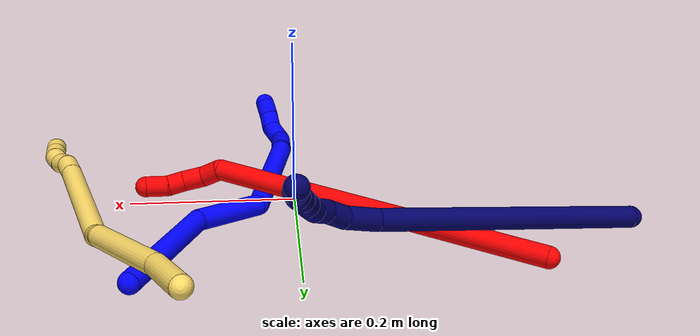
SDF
<sdf version="1.7">
 <world name="default">
  <model name="1">
   <static>0</static>
   <link name="1">
    <collision name="collision-cylinder-e_1_1_4">
     <pose>0.021065 -0.063349 -0.022676 1.91453 0.303402 0.427557</pose>
     <geometry><cylinder><radius>0.0125</radius><length>0.141012</length></cylinder></geometry>
     <surface>
      <friction><ode><mu>1.16</mu><mu2>1.16</mu2><slip1>0</slip1><slip2>0</slip2></ode></friction>
      <contact><ode><kp>1e+06</kp><kd>1</kd><max_vel>0</max_vel><min_depth>0.001</min_depth></ode></contact>
     </surface>
    </collision>
    <visual name="visual-cylinder-e_1_1_4">
     <pose>0.021065 -0.063349 -0.022676 1.91453 0.303402 0.427557</pose>
     <geometry><cylinder><radius>0.0125</radius><length>0.141012</length></cylinder></geometry>
     <material><ambient>0 0 1 1</ambient></material>
    </visual>
    <collision name="collision-cylinder-e_2_4_5">
     <pose>0.047433 -0.154496 -0.076341 2.41045 0.126707 0.328478</pose>
     <geometry><cylinder><radius>0.0125</radius><length>0.083933</length></cylinder></geometry>
     <surface>
      <friction><ode><mu>1.16</mu><mu2>1.16</mu2><slip1>0</slip1><slip2>0</slip2></ode></friction>
      <contact><ode><kp>1e+06</kp><kd>1</kd><max_vel>0</max_vel><min_depth>0.001</min_depth></ode></contact>
     </surface>
    </collision>
    <visual name="visual-cylinder-e_2_4_5">
     <pose>0.047433 -0.154496 -0.076341 2.41045 0.126707 0.328478</pose>
     <geometry><cylinder><radius>0.0125</radius><length>0.083933</length></cylinder></geometry>
     <material><ambient>0 0 1 1</ambient></material>
    </visual>
    <collision name="collision-cylinder-e_3_5_6">
     <pose>0.07616 -0.247343 -0.112954 1.65702 0.34445 0.374815</pose>
     <geometry><cylinder><radius>0.0125</radius><length>0.138733</length></cylinder></geometry>
     <surface>
      <friction><ode><mu>1.16</mu><mu2>1.16</mu2><slip1>0</slip1><slip2>0</slip2></ode></friction>
      <contact><ode><kp>1e+06</kp><kd>1</kd><max_vel>0</max_vel><min_depth>0.001</min_depth></ode></contact>
     </surface>
    </collision>
    <visual name="visual-cylinder-e_3_5_6">
     <pose>0.07616 -0.247343 -0.112954 1.65702 0.34445 0.374815</pose>
     <geometry><cylinder><radius>0.0125</radius><length>0.138733</length></cylinder></geometry>
     <material><ambient>0 0 1 1</ambient></material>
    </visual>
    <collision name="collision-cylinder-e_4_6_7">
     <pose>0.121685 -0.338419 -0.118002 1.54873 0.70389 0.689727</pose>
     <geometry><cylinder><radius>0.0125</radius><length>0.0683</length></cylinder></geometry>
     <surface>
      <friction><ode><mu>1.16</mu><mu2>1.16</mu2><slip1>0</slip1><slip2>0</slip2></ode></friction>
      <contact><ode><kp>1e+06</kp><kd>1</kd><max_vel>0</max_vel><min_depth>0.001</min_depth></ode></contact>
     </surface>
    </collision>
    <visual name="visual-cylinder-e_4_6_7">
     <pose>0.121685 -0.338419 -0.118002 1.54873 0.70389 0.689727</pose>
     <geometry><cylinder><radius>0.0125</radius><length>0.0683</length></cylinder></geometry>
     <material><ambient>0 0 1 1</ambient></material>
    </visual>
    <collision name="collision-cylinder-e_5_7_8">
     <pose>0.146867 -0.374519 -0.109237 0.888066 0.232974 0.111219</pose>
     <geometry><cylinder><radius>0.0125</radius><length>0.026686</length></cylinder></geometry>
     <surface>
      <friction><ode><mu>1.16</mu><mu2>1.16</mu2><slip1>0</slip1><slip2>0</slip2></ode></friction>
      <contact><ode><kp>1e+06</kp><kd>1</kd><max_vel>0</max_vel><min_depth>0.001</min_depth></ode></contact>
     </surface>
    </collision>
    <visual name="visual-cylinder-e_5_7_8">
     <pose>0.146867 -0.374519 -0.109237 0.888066 0.232974 0.111219</pose>
     <geometry><cylinder><radius>0.0125</radius><length>0.026686</length></cylinder></geometry>
     <material><ambient>0 0 1 1</ambient></material>
    </visual>
    <collision name="collision-cylinder-e_6_8_9">
     <pose>0.149223 -0.39402 -0.096605 1.13059 -0.069378 -0.044021</pose>
     <geometry><cylinder><radius>0.0125</radius><length>0.020894</length></cylinder></geometry>
     <surface>
      <friction><ode><mu>1.16</mu><mu2>1.16</mu2><slip1>0</slip1><slip2>0</slip2></ode></friction>
      <contact><ode><kp>1e+06</kp><kd>1</kd><max_vel>0</max_vel><min_depth>0.001</min_depth></ode></contact>
     </surface>
    </collision>
    <visual name="visual-cylinder-e_6_8_9">
     <pose>0.149223 -0.39402 -0.096605 1.13059 -0.069378 -0.044021</pose>
     <geometry><cylinder><radius>0.0125</radius><length>0.020894</length></cylinder></geometry>
     <material><ambient>0 0 1 1</ambient></material>
    </visual>
    <collision name="collision-cylinder-e_7_9_2">
     <pose>0.146779 -0.411952 -0.08676 1.00467 -0.169099 -0.093048</pose>
     <geometry><cylinder><radius>0.0125</radius><length>0.020443</length></cylinder></geometry>
     <surface>
      <friction><ode><mu>1.16</mu><mu2>1.16</mu2><slip1>0</slip1><slip2>0</slip2></ode></friction>
      <contact><ode><kp>1e+06</kp><kd>1</kd><max_vel>0</max_vel><min_depth>0.001</min_depth></ode></contact>
     </surface>
    </collision>
    <visual name="visual-cylinder-e_7_9_2">
     <pose>0.146779 -0.411952 -0.08676 1.00467 -0.169099 -0.093048</pose>
     <geometry><cylinder><radius>0.0125</radius><length>0.020443</length></cylinder></geometry>
     <material><ambient>0 0 1 1</ambient></material>
    </visual>
    <collision name="collision-sphere-2">
     <pose>0.145059 -0.420455 -0.081356 0 -0 0</pose>
     <geometry><sphere><radius>0.0125</radius></sphere></geometry>
     <surface>
      <friction><ode><mu>1.16</mu><mu2>1.16</mu2><slip1>0</slip1><slip2>0</slip2></ode></friction>
      <contact><ode><kp>1e+06</kp><kd>1</kd><max_vel>0</max_vel><min_depth>0.001</min_depth></ode></contact>
     </surface>
    </collision>
    <visual name="visual-sphere-2">
     <pose>0.145059 -0.420455 -0.081356 0 -0 0</pose>
     <geometry><sphere><radius>0.0125</radius></sphere></geometry>
     <material><ambient>0 0 1 1</ambient></material>
    </visual>
    <collision name="collision-sphere-9">
     <pose>0.148499 -0.403448 -0.092164 0 -0 0</pose>
     <geometry><sphere><radius>0.0125</radius></sphere></geometry>
     <surface>
      <friction><ode><mu>1.16</mu><mu2>1.16</mu2><slip1>0</slip1><slip2>0</slip2></ode></friction>
      <contact><ode><kp>1e+06</kp><kd>1</kd><max_vel>0</max_vel><min_depth>0.001</min_depth></ode></contact>
     </surface>
    </collision>
    <visual name="visual-sphere-9">
     <pose>0.148499 -0.403448 -0.092164 0 -0 0</pose>
     <geometry><sphere><radius>0.0125</radius></sphere></geometry>
     <material><ambient>0 0 1 1</ambient></material>
    </visual>
    <collision name="collision-sphere-4">
     <pose>0.04213 -0.126699 -0.045352 0 -0 0</pose>
     <geometry><sphere><radius>0.0125</radius></sphere></geometry>
     <surface>
      <friction><ode><mu>1.16</mu><mu2>1.16</mu2><slip1>0</slip1><slip2>0</slip2></ode></friction>
      <contact><ode><kp>1e+06</kp><kd>1</kd><max_vel>0</max_vel><min_depth>0.001</min_depth></ode></contact>
     </surface>
    </collision>
    <visual name="visual-sphere-4">
     <pose>0.04213 -0.126699 -0.045352 0 -0 0</pose>
     <geometry><sphere><radius>0.0125</radius></sphere></geometry>
     <material><ambient>0 0 1 1</ambient></material>
    </visual>
    <collision name="collision-sphere-1">
     <geometry><sphere><radius>0.0125</radius></sphere></geometry>
     <surface>
      <friction><ode><mu>1.16</mu><mu2>1.16</mu2><slip1>0</slip1><slip2>0</slip2></ode></friction>
      <contact><ode><kp>1e+06</kp><kd>1</kd><max_vel>0</max_vel><min_depth>0.001</min_depth></ode></contact>
     </surface>
    </collision>
    <visual name="visual-sphere-1">
     <geometry><sphere><radius>0.0125</radius></sphere></geometry>
     <material><ambient>0 0 1 1</ambient></material>
    </visual>
    <collision name="collision-sphere-8">
     <pose>0.149947 -0.384591 -0.101046 0 -0 0</pose>
     <geometry><sphere><radius>0.0125</radius></sphere></geometry>
     <surface>
      <friction><ode><mu>1.16</mu><mu2>1.16</mu2><slip1>0</slip1><slip2>0</slip2></ode></friction>
      <contact><ode><kp>1e+06</kp><kd>1</kd><max_vel>0</max_vel><min_depth>0.001</min_depth></ode></contact>
     </surface>
    </collision>
    <visual name="visual-sphere-8">
     <pose>0.149947 -0.384591 -0.101046 0 -0 0</pose>
     <geometry><sphere><radius>0.0125</radius></sphere></geometry>
     <material><ambient>0 0 1 1</ambient></material>
    </visual>
    <collision name="collision-sphere-5">
     <pose>0.052736 -0.182293 -0.107331 0 -0 0</pose>
     <geometry><sphere><radius>0.0125</radius></sphere></geometry>
     <surface>
      <friction><ode><mu>1.16</mu><mu2>1.16</mu2><slip1>0</slip1><slip2>0</slip2></ode></friction>
      <contact><ode><kp>1e+06</kp><kd>1</kd><max_vel>0</max_vel><min_depth>0.001</min_depth></ode></contact>
     </surface>
    </collision>
    <visual name="visual-sphere-5">
     <pose>0.052736 -0.182293 -0.107331 0 -0 0</pose>
     <geometry><sphere><radius>0.0125</radius></sphere></geometry>
     <material><ambient>0 0 1 1</ambient></material>
    </visual>
    <collision name="collision-sphere-6">
     <pose>0.099584 -0.312392 -0.118577 0 -0 0</pose>
     <geometry><sphere><radius>0.0125</radius></sphere></geometry>
     <surface>
      <friction><ode><mu>1.16</mu><mu2>1.16</mu2><slip1>0</slip1><slip2>0</slip2></ode></friction>
      <contact><ode><kp>1e+06</kp><kd>1</kd><max_vel>0</max_vel><min_depth>0.001</min_depth></ode></contact>
     </surface>
    </collision>
    <visual name="visual-sphere-6">
     <pose>0.099584 -0.312392 -0.118577 0 -0 0</pose>
     <geometry><sphere><radius>0.0125</radius></sphere></geometry>
     <material><ambient>0 0 1 1</ambient></material>
    </visual>
    <collision name="collision-sphere-7">
     <pose>0.143786 -0.364446 -0.117428 0 -0 0</pose>
     <geometry><sphere><radius>0.0125</radius></sphere></geometry>
     <surface>
      <friction><ode><mu>1.16</mu><mu2>1.16</mu2><slip1>0</slip1><slip2>0</slip2></ode></friction>
      <contact><ode><kp>1e+06</kp><kd>1</kd><max_vel>0</max_vel><min_depth>0.001</min_depth></ode></contact>
     </surface>
    </collision>
    <visual name="visual-sphere-7">
     <pose>0.143786 -0.364446 -0.117428 0 -0 0</pose>
     <geometry><sphere><radius>0.0125</radius></sphere></geometry>
     <material><ambient>0 0 1 1</ambient></material>
    </visual>
    <inertial>
     <pose>0.071733 -0.211955 -0.080085 0 -0 0</pose>
     <mass>0.5</mass>
     <inertia>
      <ixx>0.000695</ixx>
      <ixy>0</ixy>
      <ixz>0</ixz>
      <iyy>0.000116</iyy>
      <iyz>0</iyz>
      <izz>0.00031</izz>
     </inertia>
    </inertial>
   </link>
   <pose>0.177005 0.207733 0.012493 -0.905794 0.980997 -1.10015</pose>
  </model>
  <model name="2">
   <static>0</static>
   <link name="2">
    <collision name="collision-cylinder-e_1_1_4">
     <pose>0.112132 -0.048036 -0.159849 2.84967 0.591555 2.2426</pose>
     <geometry><cylinder><radius>0.0125</radius><length>0.402158</length></cylinder></geometry>
     <surface>
      <friction><ode><mu>1.16</mu><mu2>1.16</mu2><slip1>0</slip1><slip2>0</slip2></ode></friction>
      <contact><ode><kp>1e+06</kp><kd>1</kd><max_vel>0</max_vel><min_depth>0.001</min_depth></ode></contact>
     </surface>
    </collision>
    <visual name="visual-cylinder-e_1_1_4">
     <pose>0.112132 -0.048036 -0.159849 2.84967 0.591555 2.2426</pose>
     <geometry><cylinder><radius>0.0125</radius><length>0.402158</length></cylinder></geometry>
     <material><ambient>1 0 0 1</ambient></material>
    </visual>
    <collision name="collision-cylinder-e_2_4_5">
     <pose>0.235322 -0.095014 -0.325369 -2.95723 1.08996 -2.83895</pose>
     <geometry><cylinder><radius>0.0125</radius><length>0.024943</length></cylinder></geometry>
     <surface>
      <friction><ode><mu>1.16</mu><mu2>1.16</mu2><slip1>0</slip1><slip2>0</slip2></ode></friction>
      <contact><ode><kp>1e+06</kp><kd>1</kd><max_vel>0</max_vel><min_depth>0.001</min_depth></ode></contact>
     </surface>
    </collision>
    <visual name="visual-cylinder-e_2_4_5">
     <pose>0.235322 -0.095014 -0.325369 -2.95723 1.08996 -2.83895</pose>
     <geometry><cylinder><radius>0.0125</radius><length>0.024943</length></cylinder></geometry>
     <material><ambient>1 0 0 1</ambient></material>
    </visual>
    <collision name="collision-cylinder-e_3_5_6">
     <pose>0.25782 -0.098333 -0.335589 2.37562 1.06654 1.94385</pose>
     <geometry><cylinder><radius>0.0125</radius><length>0.026133</length></cylinder></geometry>
     <surface>
      <friction><ode><mu>1.16</mu><mu2>1.16</mu2><slip1>0</slip1><slip2>0</slip2></ode></friction>
      <contact><ode><kp>1e+06</kp><kd>1</kd><max_vel>0</max_vel><min_depth>0.001</min_depth></ode></contact>
     </surface>
    </collision>
    <visual name="visual-cylinder-e_3_5_6">
     <pose>0.25782 -0.098333 -0.335589 2.37562 1.06654 1.94385</pose>
     <geometry><cylinder><radius>0.0125</radius><length>0.026133</length></cylinder></geometry>
     <material><ambient>1 0 0 1</ambient></material>
    </visual>
    <collision name="collision-cylinder-e_4_6_7">
     <pose>0.277716 -0.108188 -0.341156 1.75436 0.988204 1.14976</pose>
     <geometry><cylinder><radius>0.0125</radius><length>0.020253</length></cylinder></geometry>
     <surface>
      <friction><ode><mu>1.16</mu><mu2>1.16</mu2><slip1>0</slip1><slip2>0</slip2></ode></friction>
      <contact><ode><kp>1e+06</kp><kd>1</kd><max_vel>0</max_vel><min_depth>0.001</min_depth></ode></contact>
     </surface>
    </collision>
    <visual name="visual-cylinder-e_4_6_7">
     <pose>0.277716 -0.108188 -0.341156 1.75436 0.988204 1.14976</pose>
     <geometry><cylinder><radius>0.0125</radius><length>0.020253</length></cylinder></geometry>
     <material><ambient>1 0 0 1</ambient></material>
    </visual>
    <collision name="collision-cylinder-e_5_7_2">
     <pose>0.295705 -0.121771 -0.346548 2.06573 0.802582 1.2364</pose>
     <geometry><cylinder><radius>0.0125</radius><length>0.026512</length></cylinder></geometry>
     <surface>
      <friction><ode><mu>1.16</mu><mu2>1.16</mu2><slip1>0</slip1><slip2>0</slip2></ode></friction>
      <contact><ode><kp>1e+06</kp><kd>1</kd><max_vel>0</max_vel><min_depth>0.001</min_depth></ode></contact>
     </surface>
    </collision>
    <visual name="visual-cylinder-e_5_7_2">
     <pose>0.295705 -0.121771 -0.346548 2.06573 0.802582 1.2364</pose>
     <geometry><cylinder><radius>0.0125</radius><length>0.026512</length></cylinder></geometry>
     <material><ambient>1 0 0 1</ambient></material>
    </visual>
    <collision name="collision-sphere-2">
     <pose>0.305239 -0.129877 -0.350923 0 -0 0</pose>
     <geometry><sphere><radius>0.0125</radius></sphere></geometry>
     <surface>
      <friction><ode><mu>1.16</mu><mu2>1.16</mu2><slip1>0</slip1><slip2>0</slip2></ode></friction>
      <contact><ode><kp>1e+06</kp><kd>1</kd><max_vel>0</max_vel><min_depth>0.001</min_depth></ode></contact>
     </surface>
    </collision>
    <visual name="visual-sphere-2">
     <pose>0.305239 -0.129877 -0.350923 0 -0 0</pose>
     <geometry><sphere><radius>0.0125</radius></sphere></geometry>
     <material><ambient>1 0 0 1</ambient></material>
    </visual>
    <collision name="collision-sphere-7">
     <pose>0.286172 -0.113666 -0.342173 0 -0 0</pose>
     <geometry><sphere><radius>0.0125</radius></sphere></geometry>
     <surface>
      <friction><ode><mu>1.16</mu><mu2>1.16</mu2><slip1>0</slip1><slip2>0</slip2></ode></friction>
      <contact><ode><kp>1e+06</kp><kd>1</kd><max_vel>0</max_vel><min_depth>0.001</min_depth></ode></contact>
     </surface>
    </collision>
    <visual name="visual-sphere-7">
     <pose>0.286172 -0.113666 -0.342173 0 -0 0</pose>
     <geometry><sphere><radius>0.0125</radius></sphere></geometry>
     <material><ambient>1 0 0 1</ambient></material>
    </visual>
    <collision name="collision-sphere-6">
     <pose>0.26926 -0.10271 -0.340139 0 -0 0</pose>
     <geometry><sphere><radius>0.0125</radius></sphere></geometry>
     <surface>
      <friction><ode><mu>1.16</mu><mu2>1.16</mu2><slip1>0</slip1><slip2>0</slip2></ode></friction>
      <contact><ode><kp>1e+06</kp><kd>1</kd><max_vel>0</max_vel><min_depth>0.001</min_depth></ode></contact>
     </surface>
    </collision>
    <visual name="visual-sphere-6">
     <pose>0.26926 -0.10271 -0.340139 0 -0 0</pose>
     <geometry><sphere><radius>0.0125</radius></sphere></geometry>
     <material><ambient>1 0 0 1</ambient></material>
    </visual>
    <collision name="collision-sphere-5">
     <pose>0.246379 -0.093956 -0.331039 0 -0 0</pose>
     <geometry><sphere><radius>0.0125</radius></sphere></geometry>
     <surface>
      <friction><ode><mu>1.16</mu><mu2>1.16</mu2><slip1>0</slip1><slip2>0</slip2></ode></friction>
      <contact><ode><kp>1e+06</kp><kd>1</kd><max_vel>0</max_vel><min_depth>0.001</min_depth></ode></contact>
     </surface>
    </collision>
    <visual name="visual-sphere-5">
     <pose>0.246379 -0.093956 -0.331039 0 -0 0</pose>
     <geometry><sphere><radius>0.0125</radius></sphere></geometry>
     <material><ambient>1 0 0 1</ambient></material>
    </visual>
    <collision name="collision-sphere-1">
     <geometry><sphere><radius>0.0125</radius></sphere></geometry>
     <surface>
      <friction><ode><mu>1.16</mu><mu2>1.16</mu2><slip1>0</slip1><slip2>0</slip2></ode></friction>
      <contact><ode><kp>1e+06</kp><kd>1</kd><max_vel>0</max_vel><min_depth>0.001</min_depth></ode></contact>
     </surface>
    </collision>
    <visual name="visual-sphere-1">
     <geometry><sphere><radius>0.0125</radius></sphere></geometry>
     <material><ambient>1 0 0 1</ambient></material>
    </visual>
    <collision name="collision-sphere-4">
     <pose>0.224265 -0.096071 -0.319698 0 -0 0</pose>
     <geometry><sphere><radius>0.0125</radius></sphere></geometry>
     <surface>
      <friction><ode><mu>1.16</mu><mu2>1.16</mu2><slip1>0</slip1><slip2>0</slip2></ode></friction>
      <contact><ode><kp>1e+06</kp><kd>1</kd><max_vel>0</max_vel><min_depth>0.001</min_depth></ode></contact>
     </surface>
    </collision>
    <visual name="visual-sphere-4">
     <pose>0.224265 -0.096071 -0.319698 0 -0 0</pose>
     <geometry><sphere><radius>0.0125</radius></sphere></geometry>
     <material><ambient>1 0 0 1</ambient></material>
    </visual>
    <inertial>
     <pose>0.142333 -0.059354 -0.194535 0 -0 0</pose>
     <mass>0.5</mass>
     <inertia>
      <ixx>0.00075</ixx>
      <ixy>0</ixy>
      <ixz>0</ixz>
      <iyy>0.007454</iyy>
      <iyz>0</iyz>
      <izz>-0.001764</izz>
     </inertia>
    </inertial>
   </link>
   <pose>-0.263123 0.186565 0.012518 -2.04991 0.715386 0.14252</pose>
  </model>
  <model name="5">
   <static>0</static>
   <link name="5">
    <collision name="collision-cylinder-e_1_1_4">
     <pose>0.007506 -0.015747 0.028339 0.507187 0.227513 0.059204</pose>
     <geometry><cylinder><radius>0.0125</radius><length>0.066555</length></cylinder></geometry>
     <surface>
      <friction><ode><mu>1.16</mu><mu2>1.16</mu2><slip1>0</slip1><slip2>0</slip2></ode></friction>
      <contact><ode><kp>1e+06</kp><kd>1</kd><max_vel>0</max_vel><min_depth>0.001</min_depth></ode></contact>
     </surface>
    </collision>
    <visual name="visual-cylinder-e_1_1_4">
     <pose>0.007506 -0.015747 0.028339 0.507187 0.227513 0.059204</pose>
     <geometry><cylinder><radius>0.0125</radius><length>0.066555</length></cylinder></geometry>
     <material><ambient>1 0.858824 0.4 1</ambient></material>
    </visual>
    <collision name="collision-cylinder-e_2_4_5">
     <pose>0.023258 -0.068919 0.108199 0.628226 0.12878 0.041888</pose>
     <geometry><cylinder><radius>0.0125</radius><length>0.128422</length></cylinder></geometry>
     <surface>
      <friction><ode><mu>1.16</mu><mu2>1.16</mu2><slip1>0</slip1><slip2>0</slip2></ode></friction>
      <contact><ode><kp>1e+06</kp><kd>1</kd><max_vel>0</max_vel><min_depth>0.001</min_depth></ode></contact>
     </surface>
    </collision>
    <visual name="visual-cylinder-e_2_4_5">
     <pose>0.023258 -0.068919 0.108199 0.628226 0.12878 0.041888</pose>
     <geometry><cylinder><radius>0.0125</radius><length>0.128422</length></cylinder></geometry>
     <material><ambient>1 0.858824 0.4 1</ambient></material>
    </visual>
    <collision name="collision-cylinder-e_3_5_6">
     <pose>0.032007 -0.109784 0.172821 0.256764 0.037076 0.004787</pose>
     <geometry><cylinder><radius>0.0125</radius><length>0.027111</length></cylinder></geometry>
     <surface>
      <friction><ode><mu>1.16</mu><mu2>1.16</mu2><slip1>0</slip1><slip2>0</slip2></ode></friction>
      <contact><ode><kp>1e+06</kp><kd>1</kd><max_vel>0</max_vel><min_depth>0.001</min_depth></ode></contact>
     </surface>
    </collision>
    <visual name="visual-cylinder-e_3_5_6">
     <pose>0.032007 -0.109784 0.172821 0.256764 0.037076 0.004787</pose>
     <geometry><cylinder><radius>0.0125</radius><length>0.027111</length></cylinder></geometry>
     <material><ambient>1 0.858824 0.4 1</ambient></material>
    </visual>
    <collision name="collision-cylinder-e_4_6_7">
     <pose>0.068825 -0.148636 0.25186 0.49286 0.451752 0.115479</pose>
     <geometry><cylinder><radius>0.0125</radius><length>0.16638</length></cylinder></geometry>
     <surface>
      <friction><ode><mu>1.16</mu><mu2>1.16</mu2><slip1>0</slip1><slip2>0</slip2></ode></friction>
      <contact><ode><kp>1e+06</kp><kd>1</kd><max_vel>0</max_vel><min_depth>0.001</min_depth></ode></contact>
     </surface>
    </collision>
    <visual name="visual-cylinder-e_4_6_7">
     <pose>0.068825 -0.148636 0.25186 0.49286 0.451752 0.115479</pose>
     <geometry><cylinder><radius>0.0125</radius><length>0.16638</length></cylinder></geometry>
     <material><ambient>1 0.858824 0.4 1</ambient></material>
    </visual>
    <collision name="collision-cylinder-e_5_7_8">
     <pose>0.111221 -0.190839 0.329504 0.525587 0.422225 0.115175</pose>
     <geometry><cylinder><radius>0.0125</radius><length>0.029674</length></cylinder></geometry>
     <surface>
      <friction><ode><mu>1.16</mu><mu2>1.16</mu2><slip1>0</slip1><slip2>0</slip2></ode></friction>
      <contact><ode><kp>1e+06</kp><kd>1</kd><max_vel>0</max_vel><min_depth>0.001</min_depth></ode></contact>
     </surface>
    </collision>
    <visual name="visual-cylinder-e_5_7_8">
     <pose>0.111221 -0.190839 0.329504 0.525587 0.422225 0.115175</pose>
     <geometry><cylinder><radius>0.0125</radius><length>0.029674</length></cylinder></geometry>
     <material><ambient>1 0.858824 0.4 1</ambient></material>
    </visual>
    <collision name="collision-cylinder-e_6_8_9">
     <pose>0.117827 -0.203614 0.349513 0.624661 0.051397 0.016599</pose>
     <geometry><cylinder><radius>0.0125</radius><length>0.020494</length></cylinder></geometry>
     <surface>
      <friction><ode><mu>1.16</mu><mu2>1.16</mu2><slip1>0</slip1><slip2>0</slip2></ode></friction>
      <contact><ode><kp>1e+06</kp><kd>1</kd><max_vel>0</max_vel><min_depth>0.001</min_depth></ode></contact>
     </surface>
    </collision>
    <visual name="visual-cylinder-e_6_8_9">
     <pose>0.117827 -0.203614 0.349513 0.624661 0.051397 0.016599</pose>
     <geometry><cylinder><radius>0.0125</radius><length>0.020494</length></cylinder></geometry>
     <material><ambient>1 0.858824 0.4 1</ambient></material>
    </visual>
    <collision name="collision-cylinder-e_7_9_10">
     <pose>0.121972 -0.215474 0.365327 0.663635 0.362543 0.126136</pose>
     <geometry><cylinder><radius>0.0125</radius><length>0.020401</length></cylinder></geometry>
     <surface>
      <friction><ode><mu>1.16</mu><mu2>1.16</mu2><slip1>0</slip1><slip2>0</slip2></ode></friction>
      <contact><ode><kp>1e+06</kp><kd>1</kd><max_vel>0</max_vel><min_depth>0.001</min_depth></ode></contact>
     </surface>
    </collision>
    <visual name="visual-cylinder-e_7_9_10">
     <pose>0.121972 -0.215474 0.365327 0.663635 0.362543 0.126136</pose>
     <geometry><cylinder><radius>0.0125</radius><length>0.020401</length></cylinder></geometry>
     <material><ambient>1 0.858824 0.4 1</ambient></material>
    </visual>
    <collision name="collision-cylinder-e_8_10_11">
     <pose>0.129947 -0.223804 0.381774 0.268148 0.439688 0.060262</pose>
     <geometry><cylinder><radius>0.0125</radius><length>0.020477</length></cylinder></geometry>
     <surface>
      <friction><ode><mu>1.16</mu><mu2>1.16</mu2><slip1>0</slip1><slip2>0</slip2></ode></friction>
      <contact><ode><kp>1e+06</kp><kd>1</kd><max_vel>0</max_vel><min_depth>0.001</min_depth></ode></contact>
     </surface>
    </collision>
    <visual name="visual-cylinder-e_8_10_11">
     <pose>0.129947 -0.223804 0.381774 0.268148 0.439688 0.060262</pose>
     <geometry><cylinder><radius>0.0125</radius><length>0.020477</length></cylinder></geometry>
     <material><ambient>1 0.858824 0.4 1</ambient></material>
    </visual>
    <collision name="collision-cylinder-e_9_11_2">
     <pose>0.138599 -0.228594 0.399709 0.253835 0.432513 0.056052</pose>
     <geometry><cylinder><radius>0.0125</radius><length>0.020487</length></cylinder></geometry>
     <surface>
      <friction><ode><mu>1.16</mu><mu2>1.16</mu2><slip1>0</slip1><slip2>0</slip2></ode></friction>
      <contact><ode><kp>1e+06</kp><kd>1</kd><max_vel>0</max_vel><min_depth>0.001</min_depth></ode></contact>
     </surface>
    </collision>
    <visual name="visual-cylinder-e_9_11_2">
     <pose>0.138599 -0.228594 0.399709 0.253835 0.432513 0.056052</pose>
     <geometry><cylinder><radius>0.0125</radius><length>0.020487</length></cylinder></geometry>
     <material><ambient>1 0.858824 0.4 1</ambient></material>
    </visual>
    <collision name="collision-sphere-2">
     <pose>0.142892 -0.230929 0.408711 0 -0 0</pose>
     <geometry><sphere><radius>0.0125</radius></sphere></geometry>
     <surface>
      <friction><ode><mu>1.16</mu><mu2>1.16</mu2><slip1>0</slip1><slip2>0</slip2></ode></friction>
      <contact><ode><kp>1e+06</kp><kd>1</kd><max_vel>0</max_vel><min_depth>0.001</min_depth></ode></contact>
     </surface>
    </collision>
    <visual name="visual-sphere-2">
     <pose>0.142892 -0.230929 0.408711 0 -0 0</pose>
     <geometry><sphere><radius>0.0125</radius></sphere></geometry>
     <material><ambient>1 0.858824 0.4 1</ambient></material>
    </visual>
    <collision name="collision-sphere-11">
     <pose>0.134305 -0.226258 0.390707 0 -0 0</pose>
     <geometry><sphere><radius>0.0125</radius></sphere></geometry>
     <surface>
      <friction><ode><mu>1.16</mu><mu2>1.16</mu2><slip1>0</slip1><slip2>0</slip2></ode></friction>
      <contact><ode><kp>1e+06</kp><kd>1</kd><max_vel>0</max_vel><min_depth>0.001</min_depth></ode></contact>
     </surface>
    </collision>
    <visual name="visual-sphere-11">
     <pose>0.134305 -0.226258 0.390707 0 -0 0</pose>
     <geometry><sphere><radius>0.0125</radius></sphere></geometry>
     <material><ambient>1 0.858824 0.4 1</ambient></material>
    </visual>
    <collision name="collision-sphere-10">
     <pose>0.125589 -0.221349 0.37284 0 -0 0</pose>
     <geometry><sphere><radius>0.0125</radius></sphere></geometry>
     <surface>
      <friction><ode><mu>1.16</mu><mu2>1.16</mu2><slip1>0</slip1><slip2>0</slip2></ode></friction>
      <contact><ode><kp>1e+06</kp><kd>1</kd><max_vel>0</max_vel><min_depth>0.001</min_depth></ode></contact>
     </surface>
    </collision>
    <visual name="visual-sphere-10">
     <pose>0.125589 -0.221349 0.37284 0 -0 0</pose>
     <geometry><sphere><radius>0.0125</radius></sphere></geometry>
     <material><ambient>1 0.858824 0.4 1</ambient></material>
    </visual>
    <collision name="collision-sphere-9">
     <pose>0.118354 -0.209599 0.357814 0 -0 0</pose>
     <geometry><sphere><radius>0.0125</radius></sphere></geometry>
     <surface>
      <friction><ode><mu>1.16</mu><mu2>1.16</mu2><slip1>0</slip1><slip2>0</slip2></ode></friction>
      <contact><ode><kp>1e+06</kp><kd>1</kd><max_vel>0</max_vel><min_depth>0.001</min_depth></ode></contact>
     </surface>
    </collision>
    <visual name="visual-sphere-9">
     <pose>0.118354 -0.209599 0.357814 0 -0 0</pose>
     <geometry><sphere><radius>0.0125</radius></sphere></geometry>
     <material><ambient>1 0.858824 0.4 1</ambient></material>
    </visual>
    <collision name="collision-sphere-4">
     <pose>0.015012 -0.031494 0.056678 0 -0 0</pose>
     <geometry><sphere><radius>0.0125</radius></sphere></geometry>
     <surface>
      <friction><ode><mu>1.16</mu><mu2>1.16</mu2><slip1>0</slip1><slip2>0</slip2></ode></friction>
      <contact><ode><kp>1e+06</kp><kd>1</kd><max_vel>0</max_vel><min_depth>0.001</min_depth></ode></contact>
     </surface>
    </collision>
    <visual name="visual-sphere-4">
     <pose>0.015012 -0.031494 0.056678 0 -0 0</pose>
     <geometry><sphere><radius>0.0125</radius></sphere></geometry>
     <material><ambient>1 0.858824 0.4 1</ambient></material>
    </visual>
    <collision name="collision-sphere-1">
     <geometry><sphere><radius>0.0125</radius></sphere></geometry>
     <surface>
      <friction><ode><mu>1.16</mu><mu2>1.16</mu2><slip1>0</slip1><slip2>0</slip2></ode></friction>
      <contact><ode><kp>1e+06</kp><kd>1</kd><max_vel>0</max_vel><min_depth>0.001</min_depth></ode></contact>
     </surface>
    </collision>
    <visual name="visual-sphere-1">
     <geometry><sphere><radius>0.0125</radius></sphere></geometry>
     <material><ambient>1 0.858824 0.4 1</ambient></material>
    </visual>
    <collision name="collision-sphere-8">
     <pose>0.117301 -0.197629 0.341212 0 -0 0</pose>
     <geometry><sphere><radius>0.0125</radius></sphere></geometry>
     <surface>
      <friction><ode><mu>1.16</mu><mu2>1.16</mu2><slip1>0</slip1><slip2>0</slip2></ode></friction>
      <contact><ode><kp>1e+06</kp><kd>1</kd><max_vel>0</max_vel><min_depth>0.001</min_depth></ode></contact>
     </surface>
    </collision>
    <visual name="visual-sphere-8">
     <pose>0.117301 -0.197629 0.341212 0 -0 0</pose>
     <geometry><sphere><radius>0.0125</radius></sphere></geometry>
     <material><ambient>1 0.858824 0.4 1</ambient></material>
    </visual>
    <collision name="collision-sphere-5">
     <pose>0.031504 -0.106344 0.15972 0 -0 0</pose>
     <geometry><sphere><radius>0.0125</radius></sphere></geometry>
     <surface>
      <friction><ode><mu>1.16</mu><mu2>1.16</mu2><slip1>0</slip1><slip2>0</slip2></ode></friction>
      <contact><ode><kp>1e+06</kp><kd>1</kd><max_vel>0</max_vel><min_depth>0.001</min_depth></ode></contact>
     </surface>
    </collision>
    <visual name="visual-sphere-5">
     <pose>0.031504 -0.106344 0.15972 0 -0 0</pose>
     <geometry><sphere><radius>0.0125</radius></sphere></geometry>
     <material><ambient>1 0.858824 0.4 1</ambient></material>
    </visual>
    <collision name="collision-sphere-6">
     <pose>0.032509 -0.113224 0.185923 0 -0 0</pose>
     <geometry><sphere><radius>0.0125</radius></sphere></geometry>
     <surface>
      <friction><ode><mu>1.16</mu><mu2>1.16</mu2><slip1>0</slip1><slip2>0</slip2></ode></friction>
      <contact><ode><kp>1e+06</kp><kd>1</kd><max_vel>0</max_vel><min_depth>0.001</min_depth></ode></contact>
     </surface>
    </collision>
    <visual name="visual-sphere-6">
     <pose>0.032509 -0.113224 0.185923 0 -0 0</pose>
     <geometry><sphere><radius>0.0125</radius></sphere></geometry>
     <material><ambient>1 0.858824 0.4 1</ambient></material>
    </visual>
    <collision name="collision-sphere-7">
     <pose>0.105141 -0.184049 0.317797 0 -0 0</pose>
     <geometry><sphere><radius>0.0125</radius></sphere></geometry>
     <surface>
      <friction><ode><mu>1.16</mu><mu2>1.16</mu2><slip1>0</slip1><slip2>0</slip2></ode></friction>
      <contact><ode><kp>1e+06</kp><kd>1</kd><max_vel>0</max_vel><min_depth>0.001</min_depth></ode></contact>
     </surface>
    </collision>
    <visual name="visual-sphere-7">
     <pose>0.105141 -0.184049 0.317797 0 -0 0</pose>
     <geometry><sphere><radius>0.0125</radius></sphere></geometry>
     <material><ambient>1 0.858824 0.4 1</ambient></material>
    </visual>
    <inertial>
     <pose>0.059018 -0.122206 0.205542 0 -0 0</pose>
     <mass>0.5</mass>
     <inertia>
      <ixx>0.000628</ixx>
      <ixy>0</ixy>
      <ixz>0</ixz>
      <iyy>0.000565</iyy>
      <iyz>0</iyz>
      <izz>0.000118</izz>
     </inertia>
    </inertial>
   </link>
   <pose>0.118071 0.288521 0.053986 -2.63676 -0.898085 -2.11133</pose>
  </model>
  <model name="7">
   <static>0</static>
   <link name="7">
    <collision name="collision-cylinder-e_1_1_4">
     <pose>-0.002069 0.059311 -0.144487 -2.75208 -0.013247 0.06713</pose>
     <geometry><cylinder><radius>0.0125</radius><length>0.3124</length></cylinder></geometry>
     <surface>
      <friction><ode><mu>1.16</mu><mu2>1.16</mu2><slip1>0</slip1><slip2>0</slip2></ode></friction>
      <contact><ode><kp>1e+06</kp><kd>1</kd><max_vel>0</max_vel><min_depth>0.001</min_depth></ode></contact>
     </surface>
    </collision>
    <visual name="visual-cylinder-e_1_1_4">
     <pose>-0.002069 0.059311 -0.144487 -2.75208 -0.013247 0.06713</pose>
     <geometry><cylinder><radius>0.0125</radius><length>0.3124</length></cylinder></geometry>
     <material><ambient>0.003922 0 0.403922 1</ambient></material>
    </visual>
    <collision name="collision-cylinder-e_2_4_5">
     <pose>-0.001433 0.126889 -0.30675 -2.70628 0.137126 -0.602124</pose>
     <geometry><cylinder><radius>0.0125</radius><length>0.039582</length></cylinder></geometry>
     <surface>
      <friction><ode><mu>1.16</mu><mu2>1.16</mu2><slip1>0</slip1><slip2>0</slip2></ode></friction>
      <contact><ode><kp>1e+06</kp><kd>1</kd><max_vel>0</max_vel><min_depth>0.001</min_depth></ode></contact>
     </surface>
    </collision>
    <visual name="visual-cylinder-e_2_4_5">
     <pose>-0.001433 0.126889 -0.30675 -2.70628 0.137126 -0.602124</pose>
     <geometry><cylinder><radius>0.0125</radius><length>0.039582</length></cylinder></geometry>
     <material><ambient>0.003922 0 0.403922 1</ambient></material>
    </visual>
    <collision name="collision-cylinder-e_3_5_6">
     <pose>0.007267 0.14098 -0.334878 -2.62905 0.4674 -1.47496</pose>
     <geometry><cylinder><radius>0.0125</radius><length>0.026608</length></cylinder></geometry>
     <surface>
      <friction><ode><mu>1.16</mu><mu2>1.16</mu2><slip1>0</slip1><slip2>0</slip2></ode></friction>
      <contact><ode><kp>1e+06</kp><kd>1</kd><max_vel>0</max_vel><min_depth>0.001</min_depth></ode></contact>
     </surface>
    </collision>
    <visual name="visual-cylinder-e_3_5_6">
     <pose>0.007267 0.14098 -0.334878 -2.62905 0.4674 -1.47496</pose>
     <geometry><cylinder><radius>0.0125</radius><length>0.026608</length></cylinder></geometry>
     <material><ambient>0.003922 0 0.403922 1</ambient></material>
    </visual>
    <collision name="collision-cylinder-e_4_6_7">
     <pose>0.017858 0.153596 -0.351314 -2.30143 0.466963 -0.9785</pose>
     <geometry><cylinder><radius>0.0125</radius><length>0.020424</length></cylinder></geometry>
     <surface>
      <friction><ode><mu>1.16</mu><mu2>1.16</mu2><slip1>0</slip1><slip2>0</slip2></ode></friction>
      <contact><ode><kp>1e+06</kp><kd>1</kd><max_vel>0</max_vel><min_depth>0.001</min_depth></ode></contact>
     </surface>
    </collision>
    <visual name="visual-cylinder-e_4_6_7">
     <pose>0.017858 0.153596 -0.351314 -2.30143 0.466963 -0.9785</pose>
     <geometry><cylinder><radius>0.0125</radius><length>0.020424</length></cylinder></geometry>
     <material><ambient>0.003922 0 0.403922 1</ambient></material>
    </visual>
    <collision name="collision-cylinder-e_5_7_8">
     <pose>0.029667 0.166129 -0.36174 -2.21807 0.786311 -1.38959</pose>
     <geometry><cylinder><radius>0.0125</radius><length>0.020379</length></cylinder></geometry>
     <surface>
      <friction><ode><mu>1.16</mu><mu2>1.16</mu2><slip1>0</slip1><slip2>0</slip2></ode></friction>
      <contact><ode><kp>1e+06</kp><kd>1</kd><max_vel>0</max_vel><min_depth>0.001</min_depth></ode></contact>
     </surface>
    </collision>
    <visual name="visual-cylinder-e_5_7_8">
     <pose>0.029667 0.166129 -0.36174 -2.21807 0.786311 -1.38959</pose>
     <geometry><cylinder><radius>0.0125</radius><length>0.020379</length></cylinder></geometry>
     <material><ambient>0.003922 0 0.403922 1</ambient></material>
    </visual>
    <collision name="collision-cylinder-e_6_8_9">
     <pose>0.044522 0.177801 -0.369484 -2.09181 0.841026 -1.31518</pose>
     <geometry><cylinder><radius>0.0125</radius><length>0.020509</length></cylinder></geometry>
     <surface>
      <friction><ode><mu>1.16</mu><mu2>1.16</mu2><slip1>0</slip1><slip2>0</slip2></ode></friction>
      <contact><ode><kp>1e+06</kp><kd>1</kd><max_vel>0</max_vel><min_depth>0.001</min_depth></ode></contact>
     </surface>
    </collision>
    <visual name="visual-cylinder-e_6_8_9">
     <pose>0.044522 0.177801 -0.369484 -2.09181 0.841026 -1.31518</pose>
     <geometry><cylinder><radius>0.0125</radius><length>0.020509</length></cylinder></geometry>
     <material><ambient>0.003922 0 0.403922 1</ambient></material>
    </visual>
    <collision name="collision-cylinder-e_7_9_10">
     <pose>0.059214 0.190223 -0.375825 -1.99581 0.779941 -1.13463</pose>
     <geometry><cylinder><radius>0.0125</radius><length>0.020049</length></cylinder></geometry>
     <surface>
      <friction><ode><mu>1.16</mu><mu2>1.16</mu2><slip1>0</slip1><slip2>0</slip2></ode></friction>
      <contact><ode><kp>1e+06</kp><kd>1</kd><max_vel>0</max_vel><min_depth>0.001</min_depth></ode></contact>
     </surface>
    </collision>
    <visual name="visual-cylinder-e_7_9_10">
     <pose>0.059214 0.190223 -0.375825 -1.99581 0.779941 -1.13463</pose>
     <geometry><cylinder><radius>0.0125</radius><length>0.020049</length></cylinder></geometry>
     <material><ambient>0.003922 0 0.403922 1</ambient></material>
    </visual>
    <collision name="collision-cylinder-e_8_10_11">
     <pose>0.074108 0.20263 -0.380696 -1.88665 0.900286 -1.17549</pose>
     <geometry><cylinder><radius>0.0125</radius><length>0.020025</length></cylinder></geometry>
     <surface>
      <friction><ode><mu>1.16</mu><mu2>1.16</mu2><slip1>0</slip1><slip2>0</slip2></ode></friction>
      <contact><ode><kp>1e+06</kp><kd>1</kd><max_vel>0</max_vel><min_depth>0.001</min_depth></ode></contact>
     </surface>
    </collision>
    <visual name="visual-cylinder-e_8_10_11">
     <pose>0.074108 0.20263 -0.380696 -1.88665 0.900286 -1.17549</pose>
     <geometry><cylinder><radius>0.0125</radius><length>0.020025</length></cylinder></geometry>
     <material><ambient>0.003922 0 0.403922 1</ambient></material>
    </visual>
    <collision name="collision-cylinder-e_9_11_2">
     <pose>0.089926 0.214599 -0.382747 -1.59031 0.921232 -0.936862</pose>
     <geometry><cylinder><radius>0.0125</radius><length>0.020025</length></cylinder></geometry>
     <surface>
      <friction><ode><mu>1.16</mu><mu2>1.16</mu2><slip1>0</slip1><slip2>0</slip2></ode></friction>
      <contact><ode><kp>1e+06</kp><kd>1</kd><max_vel>0</max_vel><min_depth>0.001</min_depth></ode></contact>
     </surface>
    </collision>
    <visual name="visual-cylinder-e_9_11_2">
     <pose>0.089926 0.214599 -0.382747 -1.59031 0.921232 -0.936862</pose>
     <geometry><cylinder><radius>0.0125</radius><length>0.020025</length></cylinder></geometry>
     <material><ambient>0.003922 0 0.403922 1</ambient></material>
    </visual>
    <collision name="collision-sphere-2">
     <pose>0.0979 0.220654 -0.382865 0 -0 0</pose>
     <geometry><sphere><radius>0.0125</radius></sphere></geometry>
     <surface>
      <friction><ode><mu>1.16</mu><mu2>1.16</mu2><slip1>0</slip1><slip2>0</slip2></ode></friction>
      <contact><ode><kp>1e+06</kp><kd>1</kd><max_vel>0</max_vel><min_depth>0.001</min_depth></ode></contact>
     </surface>
    </collision>
    <visual name="visual-sphere-2">
     <pose>0.0979 0.220654 -0.382865 0 -0 0</pose>
     <geometry><sphere><radius>0.0125</radius></sphere></geometry>
     <material><ambient>0.003922 0 0.403922 1</ambient></material>
    </visual>
    <collision name="collision-sphere-11">
     <pose>0.081953 0.208544 -0.382629 0 -0 0</pose>
     <geometry><sphere><radius>0.0125</radius></sphere></geometry>
     <surface>
      <friction><ode><mu>1.16</mu><mu2>1.16</mu2><slip1>0</slip1><slip2>0</slip2></ode></friction>
      <contact><ode><kp>1e+06</kp><kd>1</kd><max_vel>0</max_vel><min_depth>0.001</min_depth></ode></contact>
     </surface>
    </collision>
    <visual name="visual-sphere-11">
     <pose>0.081953 0.208544 -0.382629 0 -0 0</pose>
     <geometry><sphere><radius>0.0125</radius></sphere></geometry>
     <material><ambient>0.003922 0 0.403922 1</ambient></material>
    </visual>
    <collision name="collision-sphere-10">
     <pose>0.066263 0.196716 -0.378764 0 -0 0</pose>
     <geometry><sphere><radius>0.0125</radius></sphere></geometry>
     <surface>
      <friction><ode><mu>1.16</mu><mu2>1.16</mu2><slip1>0</slip1><slip2>0</slip2></ode></friction>
      <contact><ode><kp>1e+06</kp><kd>1</kd><max_vel>0</max_vel><min_depth>0.001</min_depth></ode></contact>
     </surface>
    </collision>
    <visual name="visual-sphere-10">
     <pose>0.066263 0.196716 -0.378764 0 -0 0</pose>
     <geometry><sphere><radius>0.0125</radius></sphere></geometry>
     <material><ambient>0.003922 0 0.403922 1</ambient></material>
    </visual>
    <collision name="collision-sphere-9">
     <pose>0.052164 0.183731 -0.372887 0 -0 0</pose>
     <geometry><sphere><radius>0.0125</radius></sphere></geometry>
     <surface>
      <friction><ode><mu>1.16</mu><mu2>1.16</mu2><slip1>0</slip1><slip2>0</slip2></ode></friction>
      <contact><ode><kp>1e+06</kp><kd>1</kd><max_vel>0</max_vel><min_depth>0.001</min_depth></ode></contact>
     </surface>
    </collision>
    <visual name="visual-sphere-9">
     <pose>0.052164 0.183731 -0.372887 0 -0 0</pose>
     <geometry><sphere><radius>0.0125</radius></sphere></geometry>
     <material><ambient>0.003922 0 0.403922 1</ambient></material>
    </visual>
    <collision name="collision-sphere-4">
     <pose>-0.004138 0.118621 -0.288974 0 -0 0</pose>
     <geometry><sphere><radius>0.0125</radius></sphere></geometry>
     <surface>
      <friction><ode><mu>1.16</mu><mu2>1.16</mu2><slip1>0</slip1><slip2>0</slip2></ode></friction>
      <contact><ode><kp>1e+06</kp><kd>1</kd><max_vel>0</max_vel><min_depth>0.001</min_depth></ode></contact>
     </surface>
    </collision>
    <visual name="visual-sphere-4">
     <pose>-0.004138 0.118621 -0.288974 0 -0 0</pose>
     <geometry><sphere><radius>0.0125</radius></sphere></geometry>
     <material><ambient>0.003922 0 0.403922 1</ambient></material>
    </visual>
    <collision name="collision-sphere-1">
     <geometry><sphere><radius>0.0125</radius></sphere></geometry>
     <surface>
      <friction><ode><mu>1.16</mu><mu2>1.16</mu2><slip1>0</slip1><slip2>0</slip2></ode></friction>
      <contact><ode><kp>1e+06</kp><kd>1</kd><max_vel>0</max_vel><min_depth>0.001</min_depth></ode></contact>
     </surface>
    </collision>
    <visual name="visual-sphere-1">
     <geometry><sphere><radius>0.0125</radius></sphere></geometry>
     <material><ambient>0.003922 0 0.403922 1</ambient></material>
    </visual>
    <collision name="collision-sphere-8">
     <pose>0.036879 0.171872 -0.366081 0 -0 0</pose>
     <geometry><sphere><radius>0.0125</radius></sphere></geometry>
     <surface>
      <friction><ode><mu>1.16</mu><mu2>1.16</mu2><slip1>0</slip1><slip2>0</slip2></ode></friction>
      <contact><ode><kp>1e+06</kp><kd>1</kd><max_vel>0</max_vel><min_depth>0.001</min_depth></ode></contact>
     </surface>
    </collision>
    <visual name="visual-sphere-8">
     <pose>0.036879 0.171872 -0.366081 0 -0 0</pose>
     <geometry><sphere><radius>0.0125</radius></sphere></geometry>
     <material><ambient>0.003922 0 0.403922 1</ambient></material>
    </visual>
    <collision name="collision-sphere-5">
     <pose>0.001272 0.135156 -0.324527 0 -0 0</pose>
     <geometry><sphere><radius>0.0125</radius></sphere></geometry>
     <surface>
      <friction><ode><mu>1.16</mu><mu2>1.16</mu2><slip1>0</slip1><slip2>0</slip2></ode></friction>
      <contact><ode><kp>1e+06</kp><kd>1</kd><max_vel>0</max_vel><min_depth>0.001</min_depth></ode></contact>
     </surface>
    </collision>
    <visual name="visual-sphere-5">
     <pose>0.001272 0.135156 -0.324527 0 -0 0</pose>
     <geometry><sphere><radius>0.0125</radius></sphere></geometry>
     <material><ambient>0.003922 0 0.403922 1</ambient></material>
    </visual>
    <collision name="collision-sphere-6">
     <pose>0.013261 0.146805 -0.345229 0 -0 0</pose>
     <geometry><sphere><radius>0.0125</radius></sphere></geometry>
     <surface>
      <friction><ode><mu>1.16</mu><mu2>1.16</mu2><slip1>0</slip1><slip2>0</slip2></ode></friction>
      <contact><ode><kp>1e+06</kp><kd>1</kd><max_vel>0</max_vel><min_depth>0.001</min_depth></ode></contact>
     </surface>
    </collision>
    <visual name="visual-sphere-6">
     <pose>0.013261 0.146805 -0.345229 0 -0 0</pose>
     <geometry><sphere><radius>0.0125</radius></sphere></geometry>
     <material><ambient>0.003922 0 0.403922 1</ambient></material>
    </visual>
    <collision name="collision-sphere-7">
     <pose>0.022456 0.160387 -0.357399 0 -0 0</pose>
     <geometry><sphere><radius>0.0125</radius></sphere></geometry>
     <surface>
      <friction><ode><mu>1.16</mu><mu2>1.16</mu2><slip1>0</slip1><slip2>0</slip2></ode></friction>
      <contact><ode><kp>1e+06</kp><kd>1</kd><max_vel>0</max_vel><min_depth>0.001</min_depth></ode></contact>
     </surface>
    </collision>
    <visual name="visual-sphere-7">
     <pose>0.022456 0.160387 -0.357399 0 -0 0</pose>
     <geometry><sphere><radius>0.0125</radius></sphere></geometry>
     <material><ambient>0.003922 0 0.403922 1</ambient></material>
    </visual>
    <inertial>
     <pose>0.011689 0.09928 -0.222275 0 -0 0</pose>
     <mass>0.5</mass>
     <inertia>
      <ixx>0.002722</ixx>
      <ixy>0</ixy>
      <ixz>0</ixz>
      <iyy>-0.00218</iyy>
      <iyz>0</iyz>
      <izz>-0.000983</izz>
     </inertia>
    </inertial>
   </link>
   <pose>-0.382237 0.106959 0.016373 -2.36776 -1.19393 2.1795</pose>
  </model>
 </world>
</sdf>
